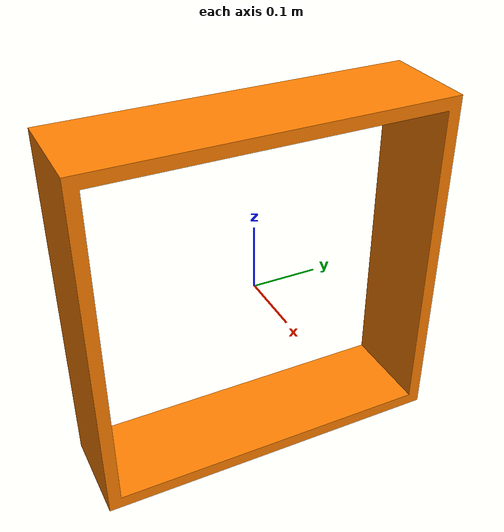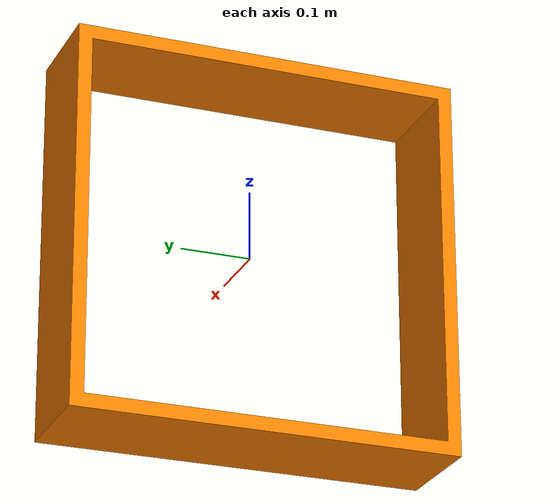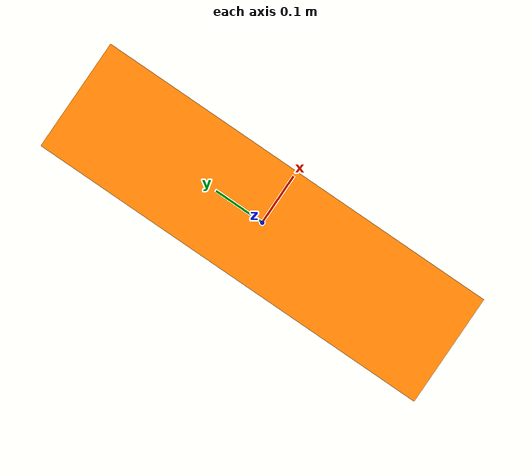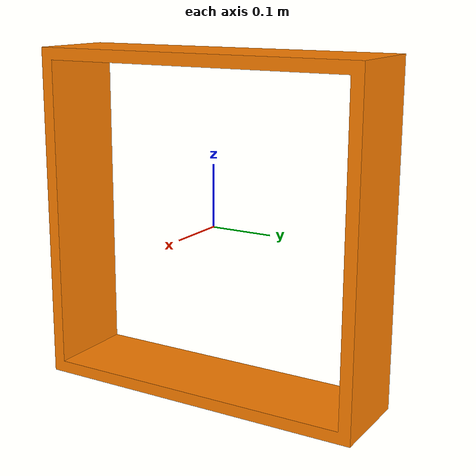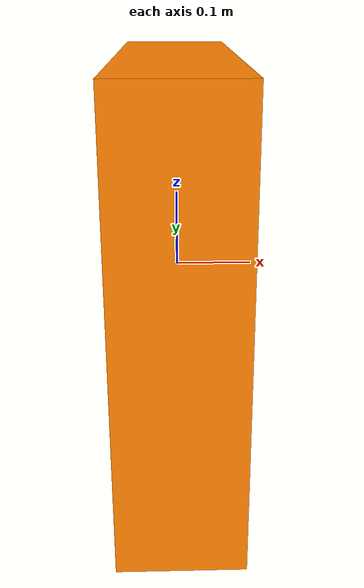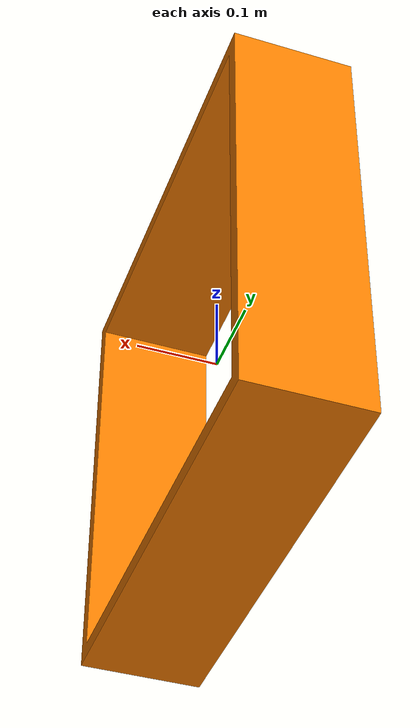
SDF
<?xml version="1.0" ?>
<sdf version="1.6">
  <model name="orange_obs">
    <static>true</static>
    <link name="link">
      <pose>0 0 0 0 0 1.5708</pose> <!-- Rotating the model 90 degrees to the right -->
      <visual name="visual">
        <geometry>
          <mesh>
            <uri>model://orange_obs/meshes/obstacle.dae</uri>
            <scale>0.5 0.5 0.5</scale> <!-- Scaling the model -->
          </mesh>
        </geometry>
        <material>
          <ambient>1 0.5 0 1</ambient> <!-- Orange color -->
          <diffuse>1 0.5 0 1</diffuse> <!-- Orange color -->
        </material>
      </visual>
      <collision name="collision">
        <geometry>
          <mesh>
            <uri>model://orange_obs/meshes/obstacle.dae</uri>
            <scale>0.5 0.5 0.5</scale> <!-- Scaling the collision mesh as well -->
          </mesh>
        </geometry>
      </collision>
    </link>
  </model>
</sdf>
